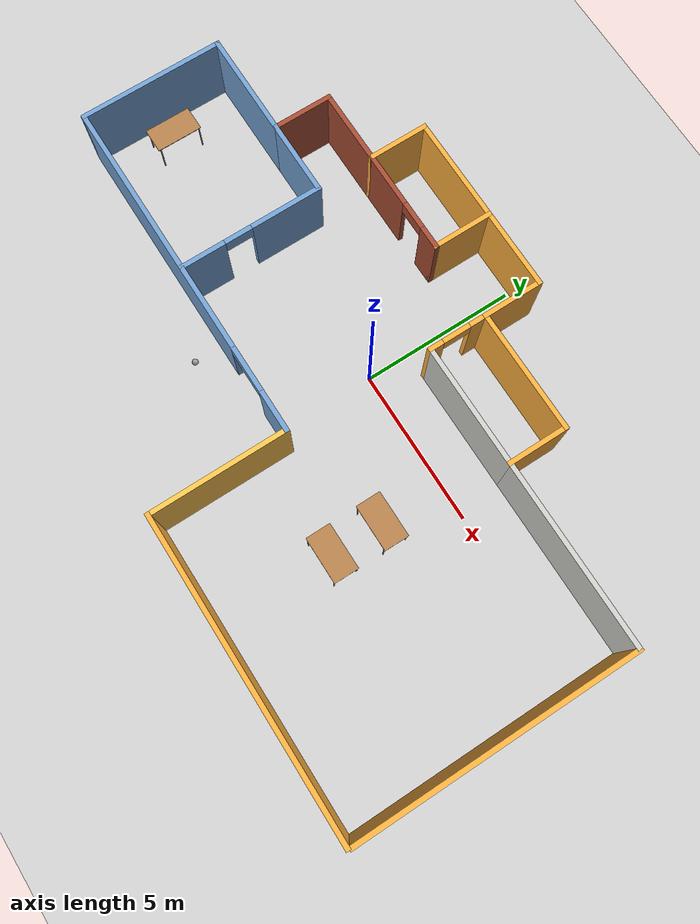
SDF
<sdf version="1.6">
 <world name="default">
  <plugin name="hello" filename="libhello.so"/>
  <plugin name="hello" filename="libhello.so"/>
  <light name="sun" type="directional">
   <pose>0 0 10 0 -0 0</pose>
   <diffuse>0.8 0.8 0.8 1</diffuse>
   <specular>0.2 0.2 0.2 1</specular>
   <attenuation>
    <range>1000</range>
    <constant>0.9</constant>
    <linear>0.01</linear>
    <quadratic>0.001</quadratic>
   </attenuation>
   <direction>-0.5 0.1 -0.9</direction>
  </light>
  <model name="ground_plane">
   <static>1</static>
   <link name="link">
    <collision name="collision">
     <geometry><plane><normal>0 0 1</normal><size>100 100</size></plane></geometry>
     <surface>
      <contact><collide_bitmask>65535</collide_bitmask></contact>
      <friction><ode><mu>100</mu><mu2>50</mu2></ode></friction>
     </surface>
    </collision>
    <visual name="visual">
     <cast_shadows>0</cast_shadows>
     <geometry><plane><normal>0 0 1</normal><size>100 100</size></plane></geometry>
     <material>
      <script><uri>file://media/materials/scripts/gazebo.material</uri><name>Gazebo/Grey</name></script>
     </material>
    </visual>
   </link>
  </model>
  <gravity>0 0 -9.8</gravity>
  <magnetic_field>6e-06 2.3e-05 -4.2e-05</magnetic_field>
  <atmosphere type="adiabatic"/>
  <physics name="default_physics" default="0" type="ode">
   <max_step_size>0.001</max_step_size>
   <real_time_factor>1</real_time_factor>
   <real_time_update_rate>1000</real_time_update_rate>
  </physics>
  <scene><ambient>0.4 0.4 0.4 1</ambient><background>0.7 0.7 0.7 1</background><shadows>1</shadows></scene>
  <audio><device>default</device></audio>
  <spherical_coordinates>
   <surface_model>EARTH_WGS84</surface_model>
   <latitude_deg>0</latitude_deg>
   <longitude_deg>0</longitude_deg>
   <elevation>0</elevation>
   <heading_deg>0</heading_deg>
  </spherical_coordinates>
  <model name="mybuilding">
   <pose>-0.12961 -1.16265 0 0 -0 0</pose>
   <link name="Wall_10">
    <collision name="Wall_10_Collision">
     <geometry><box><size>2 0.15 2.5</size></box></geometry>
     <pose>0 0 1.25 0 -0 0</pose>
    </collision>
    <visual name="Wall_10_Visual">
     <pose>0 0 1.25 0 -0 0</pose>
     <geometry><box><size>2 0.15 2.5</size></box></geometry>
     <material>
      <script><uri>file://media/materials/scripts/gazebo.material</uri><name>Gazebo/Grey</name></script>
      <ambient>0.988235 0.686275 0.243137 1</ambient>
     </material>
     <meta><layer>0</layer></meta>
    </visual>
    <pose>4.775 3.55 0 0 -0 -1.5708</pose>
   </link>
   <link name="Wall_11">
    <collision name="Wall_11_Collision">
     <geometry><box><size>6 0.15 2.5</size></box></geometry>
     <pose>0 0 1.25 0 -0 0</pose>
    </collision>
    <visual name="Wall_11_Visual">
     <pose>0 0 1.25 0 -0 0</pose>
     <geometry><box><size>6 0.15 2.5</size></box></geometry>
     <material>
      <script><uri>file://media/materials/scripts/gazebo.material</uri><name>Gazebo/CeilingTiled</name></script>
      <ambient>0.988235 0.686275 0.243137 1</ambient>
     </material>
     <meta><layer>0</layer></meta>
    </visual>
    <pose>7.7 2.625 0 0 -0 0</pose>
   </link>
   <link name="Wall_18">
    <collision name="Wall_18_Collision">
     <geometry><box><size>2 0.15 2.5</size></box></geometry>
     <pose>0 0 1.25 0 -0 0</pose>
    </collision>
    <visual name="Wall_18_Visual">
     <pose>0 0 1.25 0 -0 0</pose>
     <geometry><box><size>2 0.15 2.5</size></box></geometry>
     <material>
      <script><uri>file://media/materials/scripts/gazebo.material</uri><name>Gazebo/Bricks</name></script>
      <ambient>0.937255 0.160784 0.160784 1</ambient>
     </material>
     <meta><layer>0</layer></meta>
    </visual>
    <pose>-7.275 3.55 0 0 -0 -1.5708</pose>
   </link>
   <link name="Wall_19">
    <collision name="Wall_19_Collision">
     <geometry><box><size>3.5 0.15 2.5</size></box></geometry>
     <pose>0 0 1.25 0 -0 0</pose>
    </collision>
    <visual name="Wall_19_Visual">
     <pose>0 0 1.25 0 -0 0</pose>
     <geometry><box><size>3.5 0.15 2.5</size></box></geometry>
     <material>
      <script><uri>file://media/materials/scripts/gazebo.material</uri><name>Gazebo/Grey</name></script>
      <ambient>0.447059 0.623529 0.811765 1</ambient>
     </material>
     <meta><layer>0</layer></meta>
    </visual>
    <pose>-8.95 2.625 0 0 -0 3.14159</pose>
   </link>
   <link name="Wall_27">
    <collision name="Wall_27_Collision">
     <geometry><box><size>2.5 0.15 2.5</size></box></geometry>
     <pose>0 0 1.25 0 -0 0</pose>
    </collision>
    <visual name="Wall_27_Visual">
     <pose>0 0 1.25 0 -0 0</pose>
     <geometry><box><size>2.5 0.15 2.5</size></box></geometry>
     <material>
      <script><uri>file://media/materials/scripts/gazebo.material</uri><name>Gazebo/Grey</name></script>
      <ambient>0.447059 0.623529 0.811765 1</ambient>
     </material>
     <meta><layer>0</layer></meta>
    </visual>
    <pose>-6.1 2.625 0 0 -0 0</pose>
   </link>
   <link name="Wall_30">
    <collision name="Wall_30_Collision">
     <geometry><box><size>4 0.15 2.5</size></box></geometry>
     <pose>0 0 1.25 0 -0 0</pose>
    </collision>
    <visual name="Wall_30_Visual">
     <pose>0 0 1.25 0 -0 0</pose>
     <geometry><box><size>4 0.15 2.5</size></box></geometry>
     <material>
      <script><uri>file://media/materials/scripts/gazebo.material</uri><name>Gazebo/CeilingTiled</name></script>
      <ambient>0.988235 0.686275 0.243137 1</ambient>
     </material>
     <meta><layer>0</layer></meta>
    </visual>
    <pose>2.85 2.625 0 0 -0 3.14159</pose>
   </link>
   <link name="Wall_31">
    <pose>0.925 3.55 0 0 -0 1.5708</pose>
    <visual name="Wall_31_Visual_0">
     <pose>-0.756094 0 1.25 0 -0 0</pose>
     <geometry><box><size>0.487811 0.15 2.5</size></box></geometry>
     <material>
      <script><uri>file://media/materials/scripts/gazebo.material</uri><name>Gazebo/Grey</name></script>
      <ambient>0.988235 0.686275 0.243137 1</ambient>
     </material>
     <meta><layer>0</layer></meta>
    </visual>
    <collision name="Wall_31_Collision_0">
     <geometry><box><size>0.487811 0.15 2.5</size></box></geometry>
     <pose>-0.756094 0 1.25 0 -0 0</pose>
    </collision>
    <visual name="Wall_31_Visual_1">
     <pose>0.693906 0 1.25 0 -0 0</pose>
     <geometry><box><size>0.612189 0.15 2.5</size></box></geometry>
     <material>
      <script><uri>file://media/materials/scripts/gazebo.material</uri><name>Gazebo/Grey</name></script>
      <ambient>0.988235 0.686275 0.243137 1</ambient>
     </material>
     <meta><layer>0</layer></meta>
    </visual>
    <collision name="Wall_31_Collision_1">
     <geometry><box><size>0.612189 0.15 2.5</size></box></geometry>
     <pose>0.693906 0 1.25 0 -0 0</pose>
    </collision>
    <visual name="Wall_31_Visual_2">
     <pose>-0.062189 0 2.25 0 -0 0</pose>
     <geometry><box><size>0.9 0.15 0.5</size></box></geometry>
     <material>
      <script><uri>file://media/materials/scripts/gazebo.material</uri><name>Gazebo/Grey</name></script>
      <ambient>0.988235 0.686275 0.243137 1</ambient>
     </material>
     <meta><layer>0</layer></meta>
    </visual>
    <collision name="Wall_31_Collision_2">
     <geometry><box><size>0.9 0.15 0.5</size></box></geometry>
     <pose>-0.062189 0 2.25 0 -0 0</pose>
    </collision>
   </link>
   <link name="Wall_33">
    <pose>-3.25 4.475 0 0 -0 0</pose>
    <visual name="Wall_33_Visual_0">
     <pose>-0.834135 0 1.25 0 -0 0</pose>
     <geometry><box><size>1.83173 0.15 2.5</size></box></geometry>
     <material>
      <script><uri>file://media/materials/scripts/gazebo.material</uri><name>Gazebo/Bricks</name></script>
      <ambient>0.937255 0.160784 0.160784 1</ambient>
     </material>
     <meta><layer>0</layer></meta>
    </visual>
    <collision name="Wall_33_Collision_0">
     <geometry><box><size>1.83173 0.15 2.5</size></box></geometry>
     <pose>-0.834135 0 1.25 0 -0 0</pose>
    </collision>
    <visual name="Wall_33_Visual_1">
     <pose>1.36587 0 1.25 0 -0 0</pose>
     <geometry><box><size>0.76827 0.15 2.5</size></box></geometry>
     <material>
      <script><uri>file://media/materials/scripts/gazebo.material</uri><name>Gazebo/Bricks</name></script>
      <ambient>0.937255 0.160784 0.160784 1</ambient>
     </material>
     <meta><layer>0</layer></meta>
    </visual>
    <collision name="Wall_33_Collision_1">
     <geometry><box><size>0.76827 0.15 2.5</size></box></geometry>
     <pose>1.36587 0 1.25 0 -0 0</pose>
    </collision>
    <visual name="Wall_33_Visual_2">
     <pose>0.53173 0 2.25 0 -0 0</pose>
     <geometry><box><size>0.9 0.15 0.5</size></box></geometry>
     <material>
      <script><uri>file://media/materials/scripts/gazebo.material</uri><name>Gazebo/Bricks</name></script>
      <ambient>0.937255 0.160784 0.160784 1</ambient>
     </material>
     <meta><layer>0</layer></meta>
    </visual>
    <collision name="Wall_33_Collision_2">
     <geometry><box><size>0.9 0.15 0.5</size></box></geometry>
     <pose>0.53173 0 2.25 0 -0 0</pose>
    </collision>
   </link>
   <link name="Wall_34">
    <collision name="Wall_34_Collision">
     <geometry><box><size>2 0.15 2.5</size></box></geometry>
     <pose>0 0 1.25 0 -0 0</pose>
    </collision>
    <visual name="Wall_34_Visual">
     <pose>0 0 1.25 0 -0 0</pose>
     <geometry><box><size>2 0.15 2.5</size></box></geometry>
     <material>
      <script><uri>file://media/materials/scripts/gazebo.material</uri><name>Gazebo/Grey</name></script>
      <ambient>0.988235 0.686275 0.243137 1</ambient>
     </material>
     <meta><layer>0</layer></meta>
    </visual>
    <pose>-1.575 5.4 0 0 -0 1.5708</pose>
   </link>
   <link name="Wall_36">
    <collision name="Wall_36_Collision">
     <geometry><box><size>9 0.15 2.5</size></box></geometry>
     <pose>0 0 1.25 0 -0 0</pose>
    </collision>
    <visual name="Wall_36_Visual">
     <pose>0 0 1.25 0 -0 0</pose>
     <geometry><box><size>9 0.15 2.5</size></box></geometry>
     <material>
      <script><uri>file://media/materials/scripts/gazebo.material</uri><name>Gazebo/Grey</name></script>
      <ambient>0.988235 0.686275 0.243137 1</ambient>
     </material>
     <meta><layer>0</layer></meta>
    </visual>
    <pose>10.625 -1.8 0 0 -0 -1.5708</pose>
   </link>
   <link name="Wall_38">
    <collision name="Wall_38_Collision">
     <geometry><box><size>4.75 0.15 2.5</size></box></geometry>
     <pose>0 0 1.25 0 -0 0</pose>
    </collision>
    <visual name="Wall_38_Visual">
     <pose>0 0 1.25 0 -0 0</pose>
     <geometry><box><size>4.75 0.15 2.5</size></box></geometry>
     <material>
      <script><uri>file://media/materials/scripts/gazebo.material</uri><name>Gazebo/Grey</name></script>
      <ambient>0.447059 0.623529 0.811765 1</ambient>
     </material>
     <meta><layer>0</layer></meta>
    </visual>
    <pose>-10.625 0.325 0 0 -0 -1.5708</pose>
   </link>
   <link name="Wall_39">
    <pose>-4.95 -1.975 0 0 -0 0</pose>
    <visual name="Wall_39_Visual_0">
     <pose>-1.44542 0 1.25 0 -0 0</pose>
     <geometry><box><size>8.60915 0.15 2.5</size></box></geometry>
     <material>
      <script><uri>file://media/materials/scripts/gazebo.material</uri><name>Gazebo/Grey</name></script>
      <ambient>0.447059 0.623529 0.811765 1</ambient>
     </material>
     <meta><layer>0</layer></meta>
    </visual>
    <collision name="Wall_39_Collision_0">
     <geometry><box><size>8.60915 0.15 2.5</size></box></geometry>
     <pose>-1.44542 0 1.25 0 -0 0</pose>
    </collision>
    <visual name="Wall_39_Visual_1">
     <pose>5.05457 0 1.25 0 -0 0</pose>
     <geometry><box><size>1.39085 0.15 2.5</size></box></geometry>
     <material>
      <script><uri>file://media/materials/scripts/gazebo.material</uri><name>Gazebo/Grey</name></script>
      <ambient>0.447059 0.623529 0.811765 1</ambient>
     </material>
     <meta><layer>0</layer></meta>
    </visual>
    <collision name="Wall_39_Collision_1">
     <geometry><box><size>1.39085 0.15 2.5</size></box></geometry>
     <pose>5.05457 0 1.25 0 -0 0</pose>
    </collision>
    <visual name="Wall_39_Visual_2">
     <pose>3.60915 0 2.25 0 -0 0</pose>
     <geometry><box><size>1.5 0.15 0.5</size></box></geometry>
     <material>
      <script><uri>file://media/materials/scripts/gazebo.material</uri><name>Gazebo/Grey</name></script>
      <ambient>0.447059 0.623529 0.811765 1</ambient>
     </material>
     <meta><layer>0</layer></meta>
    </visual>
    <collision name="Wall_39_Collision_2">
     <geometry><box><size>1.5 0.15 0.5</size></box></geometry>
     <pose>3.60915 0 2.25 0 -0 0</pose>
    </collision>
   </link>
   <link name="Wall_40">
    <collision name="Wall_40_Collision">
     <geometry><box><size>4.5 0.15 2.5</size></box></geometry>
     <pose>0 0 1.25 0 -0 0</pose>
    </collision>
    <visual name="Wall_40_Visual">
     <pose>0 0 1.25 0 -0 0</pose>
     <geometry><box><size>4.5 0.15 2.5</size></box></geometry>
     <material>
      <script><uri>file://media/materials/scripts/gazebo.material</uri><name>Gazebo/Grey</name></script>
      <ambient>1 0.764706 0.305882 1</ambient>
     </material>
     <meta><layer>0</layer></meta>
    </visual>
    <pose>0.725 -4.15 0 0 -0 -1.5708</pose>
   </link>
   <link name="Wall_41">
    <collision name="Wall_41_Collision">
     <geometry><box><size>10 0.15 2.5</size></box></geometry>
     <pose>0 0 1.25 0 -0 0</pose>
    </collision>
    <visual name="Wall_41_Visual">
     <pose>0 0 1.25 0 -0 0</pose>
     <geometry><box><size>10 0.15 2.5</size></box></geometry>
     <material>
      <script><uri>file://media/materials/scripts/gazebo.material</uri><name>Gazebo/Grey</name></script>
      <ambient>0.988235 0.686275 0.243137 1</ambient>
     </material>
     <meta><layer>0</layer></meta>
    </visual>
    <pose>5.65 -6.325 0 0 -0 0</pose>
   </link>
   <link name="Wall_43">
    <pose>-4.925 0.325 0 0 -0 -1.5708</pose>
    <visual name="Wall_43_Visual_0">
     <pose>-1.20116 0 1.25 0 -0 0</pose>
     <geometry><box><size>2.34769 0.15 2.5</size></box></geometry>
     <material>
      <script><uri>file://media/materials/scripts/gazebo.material</uri><name>Gazebo/Grey</name></script>
      <ambient>0.447059 0.623529 0.811765 1</ambient>
     </material>
     <meta><layer>0</layer></meta>
    </visual>
    <collision name="Wall_43_Collision_0">
     <geometry><box><size>2.34769 0.15 2.5</size></box></geometry>
     <pose>-1.20116 0 1.25 0 -0 0</pose>
    </collision>
    <visual name="Wall_43_Visual_1">
     <pose>1.62384 0 1.25 0 -0 0</pose>
     <geometry><box><size>1.50231 0.15 2.5</size></box></geometry>
     <material>
      <script><uri>file://media/materials/scripts/gazebo.material</uri><name>Gazebo/Grey</name></script>
      <ambient>0.447059 0.623529 0.811765 1</ambient>
     </material>
     <meta><layer>0</layer></meta>
    </visual>
    <collision name="Wall_43_Collision_1">
     <geometry><box><size>1.50231 0.15 2.5</size></box></geometry>
     <pose>1.62384 0 1.25 0 -0 0</pose>
    </collision>
    <visual name="Wall_43_Visual_2">
     <pose>0.422687 0 2.25 0 -0 0</pose>
     <geometry><box><size>0.9 0.15 0.5</size></box></geometry>
     <material>
      <script><uri>file://media/materials/scripts/gazebo.material</uri><name>Gazebo/Grey</name></script>
      <ambient>0.447059 0.623529 0.811765 1</ambient>
     </material>
     <meta><layer>0</layer></meta>
    </visual>
    <collision name="Wall_43_Collision_2">
     <geometry><box><size>0.9 0.15 0.5</size></box></geometry>
     <pose>0.422687 0 2.25 0 -0 0</pose>
    </collision>
   </link>
   <link name="Wall_5">
    <collision name="Wall_5_Collision">
     <geometry><box><size>2.5 0.15 2.5</size></box></geometry>
     <pose>0 0 1.25 0 -0 0</pose>
    </collision>
    <visual name="Wall_5_Visual">
     <pose>0 0 1.25 0 -0 0</pose>
     <geometry><box><size>2.5 0.15 2.5</size></box></geometry>
     <material>
      <script><uri>file://media/materials/scripts/gazebo.material</uri><name>Gazebo/Bricks</name></script>
      <ambient>0.937255 0.160784 0.160784 1</ambient>
     </material>
     <meta><layer>0</layer></meta>
    </visual>
    <pose>-6.1 4.475 0 0 -0 0</pose>
   </link>
   <link name="Wall_6">
    <collision name="Wall_6_Collision">
     <geometry><box><size>2 0.15 2.5</size></box></geometry>
     <pose>0 0 1.25 0 -0 0</pose>
    </collision>
    <visual name="Wall_6_Visual">
     <pose>0 0 1.25 0 -0 0</pose>
     <geometry><box><size>2 0.15 2.5</size></box></geometry>
     <material>
      <script><uri>file://media/materials/scripts/gazebo.material</uri><name>Gazebo/Grey</name></script>
      <ambient>0.988235 0.686275 0.243137 1</ambient>
     </material>
     <meta><layer>0</layer></meta>
    </visual>
    <pose>-4.925 5.4 0 0 -0 1.5708</pose>
   </link>
   <link name="Wall_7">
    <collision name="Wall_7_Collision">
     <geometry><box><size>6 0.15 2.5</size></box></geometry>
     <pose>0 0 1.25 0 -0 0</pose>
    </collision>
    <visual name="Wall_7_Visual">
     <pose>0 0 1.25 0 -0 0</pose>
     <geometry><box><size>6 0.15 2.5</size></box></geometry>
     <material>
      <script><uri>file://media/materials/scripts/gazebo.material</uri><name>Gazebo/Grey</name></script>
      <ambient>0.988235 0.686275 0.243137 1</ambient>
     </material>
     <meta><layer>0</layer></meta>
    </visual>
    <pose>-2 6.325 0 0 -0 0</pose>
   </link>
   <link name="Wall_8">
    <collision name="Wall_8_Collision">
     <geometry><box><size>2 0.15 2.5</size></box></geometry>
     <pose>0 0 1.25 0 -0 0</pose>
    </collision>
    <visual name="Wall_8_Visual">
     <pose>0 0 1.25 0 -0 0</pose>
     <geometry><box><size>2 0.15 2.5</size></box></geometry>
     <material>
      <script><uri>file://media/materials/scripts/gazebo.material</uri><name>Gazebo/Grey</name></script>
      <ambient>0.988235 0.686275 0.243137 1</ambient>
     </material>
     <meta><layer>0</layer></meta>
    </visual>
    <pose>0.925 5.4 0 0 -0 -1.5708</pose>
   </link>
   <link name="Wall_9">
    <collision name="Wall_9_Collision">
     <geometry><box><size>4 0.15 2.5</size></box></geometry>
     <pose>0 0 1.25 0 -0 0</pose>
    </collision>
    <visual name="Wall_9_Visual">
     <pose>0 0 1.25 0 -0 0</pose>
     <geometry><box><size>4 0.15 2.5</size></box></geometry>
     <material>
      <script><uri>file://media/materials/scripts/gazebo.material</uri><name>Gazebo/Grey</name></script>
      <ambient>0.988235 0.686275 0.243137 1</ambient>
     </material>
     <meta><layer>0</layer></meta>
    </visual>
    <pose>2.85 4.475 0 0 -0 0</pose>
   </link>
   <static>1</static>
  </model>
  <model name="my_ball">
   <link name="link_0">
    <inertial>
     <mass>1</mass>
     <inertia><ixx>0.1</ixx><ixy>0</ixy><ixz>0</ixz><iyy>0.1</iyy><iyz>0</iyz><izz>0.1</izz></inertia>
    </inertial>
    <visual name="visual">
     <geometry><sphere><radius>0.1</radius></sphere></geometry>
     <material>
      <lighting>1</lighting>
      <script><uri>file://media/materials/scripts/gazebo.material</uri><name>Gazebo/Grey</name></script>
      <shader type="vertex"><normal_map>__default__</normal_map></shader>
      <ambient>1 1 1 1</ambient>
      <diffuse>1 1 1 1</diffuse>
      <specular>1 1 1 1</specular>
      <emissive>1 1 1 1</emissive>
     </material>
    </visual>
    <collision name="collision">
     <geometry><sphere><radius>0.1</radius></sphere></geometry>
     <surface>
      <friction>
       <ode><mu>1</mu><mu2>1</mu2><fdir1>0 0 0</fdir1><slip1>0</slip1><slip2>0</slip2></ode>
       <torsional>
        <coefficient>1</coefficient>
        <patch_radius>0</patch_radius>
        <surface_radius>0</surface_radius>
        <use_patch_radius>1</use_patch_radius>
        <ode><slip>0</slip></ode>
       </torsional>
      </friction>
      <bounce><restitution_coefficient>0</restitution_coefficient><threshold>1e+06</threshold></bounce>
      <contact>
       <collide_without_contact>0</collide_without_contact>
       <collide_without_contact_bitmask>1</collide_without_contact_bitmask>
       <collide_bitmask>1</collide_bitmask>
       <ode>
        <soft_cfm>0</soft_cfm>
        <soft_erp>0.2</soft_erp>
        <kp>1e+13</kp>
        <kd>1</kd>
        <max_vel>0.01</max_vel>
        <min_depth>0</min_depth>
       </ode>
       <bullet>
        <split_impulse>1</split_impulse>
        <split_impulse_penetration_threshold>-0.01</split_impulse_penetration_threshold>
        <soft_cfm>0</soft_cfm>
        <soft_erp>0.2</soft_erp>
        <kp>1e+13</kp>
        <kd>1</kd>
       </bullet>
      </contact>
     </surface>
    </collision>
   </link>
   <static>0</static>
   <pose>-3.25093 -4.11302 0.1 0 -0 0</pose>
  </model>
  <model name="table">
   <static>1</static>
   <link name="link">
    <collision name="surface">
     <pose>0 0 1 0 -0 0</pose>
     <geometry><box><size>1.5 0.8 0.03</size></box></geometry>
     <surface><friction><ode><mu>0.6</mu><mu2>0.6</mu2></ode></friction></surface>
    </collision>
    <visual name="visual1">
     <pose>0 0 1 0 -0 0</pose>
     <geometry><box><size>1.5 0.8 0.03</size></box></geometry>
     <material>
      <script><uri>file://media/materials/scripts/gazebo.material</uri><name>Gazebo/Wood</name></script>
     </material>
    </visual>
    <collision name="front_left_leg">
     <pose>0.68 0.38 0.5 0 -0 0</pose>
     <geometry><cylinder><radius>0.02</radius><length>1</length></cylinder></geometry>
    </collision>
    <visual name="front_left_leg">
     <pose>0.68 0.38 0.5 0 -0 0</pose>
     <geometry><cylinder><radius>0.02</radius><length>1</length></cylinder></geometry>
     <material>
      <script><uri>file://media/materials/scripts/gazebo.material</uri><name>Gazebo/Grey</name></script>
     </material>
    </visual>
    <collision name="front_right_leg">
     <pose>0.68 -0.38 0.5 0 -0 0</pose>
     <geometry><cylinder><radius>0.02</radius><length>1</length></cylinder></geometry>
    </collision>
    <visual name="front_right_leg">
     <pose>0.68 -0.38 0.5 0 -0 0</pose>
     <geometry><cylinder><radius>0.02</radius><length>1</length></cylinder></geometry>
     <material>
      <script><uri>file://media/materials/scripts/gazebo.material</uri><name>Gazebo/Grey</name></script>
     </material>
    </visual>
    <collision name="back_right_leg">
     <pose>-0.68 -0.38 0.5 0 -0 0</pose>
     <geometry><cylinder><radius>0.02</radius><length>1</length></cylinder></geometry>
    </collision>
    <visual name="back_right_leg">
     <pose>-0.68 -0.38 0.5 0 -0 0</pose>
     <geometry><cylinder><radius>0.02</radius><length>1</length></cylinder></geometry>
     <material>
      <script><uri>file://media/materials/scripts/gazebo.material</uri><name>Gazebo/Grey</name></script>
     </material>
    </visual>
    <collision name="back_left_leg">
     <pose>-0.68 0.38 0.5 0 -0 0</pose>
     <geometry><cylinder><radius>0.02</radius><length>1</length></cylinder></geometry>
    </collision>
    <visual name="back_left_leg">
     <pose>-0.68 0.38 0.5 0 -0 0</pose>
     <geometry><cylinder><radius>0.02</radius><length>1</length></cylinder></geometry>
     <material>
      <script><uri>file://media/materials/scripts/gazebo.material</uri><name>Gazebo/Grey</name></script>
     </material>
    </visual>
   </link>
   <pose>3.92547 -2.12999 0 0 -0 0</pose>
  </model>
  <model name="table_clone">
   <static>1</static>
   <link name="link">
    <collision name="surface">
     <pose>0 0 1 0 -0 0</pose>
     <geometry><box><size>1.5 0.8 0.03</size></box></geometry>
     <surface><friction><ode><mu>0.6</mu><mu2>0.6</mu2></ode></friction></surface>
    </collision>
    <visual name="visual1">
     <pose>0 0 1 0 -0 0</pose>
     <geometry><box><size>1.5 0.8 0.03</size></box></geometry>
     <material>
      <script><uri>file://media/materials/scripts/gazebo.material</uri><name>Gazebo/Wood</name></script>
     </material>
    </visual>
    <collision name="front_left_leg">
     <pose>0.68 0.38 0.5 0 -0 0</pose>
     <geometry><cylinder><radius>0.02</radius><length>1</length></cylinder></geometry>
    </collision>
    <visual name="front_left_leg">
     <pose>0.68 0.38 0.5 0 -0 0</pose>
     <geometry><cylinder><radius>0.02</radius><length>1</length></cylinder></geometry>
     <material>
      <script><uri>file://media/materials/scripts/gazebo.material</uri><name>Gazebo/Grey</name></script>
     </material>
    </visual>
    <collision name="front_right_leg">
     <pose>0.68 -0.38 0.5 0 -0 0</pose>
     <geometry><cylinder><radius>0.02</radius><length>1</length></cylinder></geometry>
    </collision>
    <visual name="front_right_leg">
     <pose>0.68 -0.38 0.5 0 -0 0</pose>
     <geometry><cylinder><radius>0.02</radius><length>1</length></cylinder></geometry>
     <material>
      <script><uri>file://media/materials/scripts/gazebo.material</uri><name>Gazebo/Grey</name></script>
     </material>
    </visual>
    <collision name="back_right_leg">
     <pose>-0.68 -0.38 0.5 0 -0 0</pose>
     <geometry><cylinder><radius>0.02</radius><length>1</length></cylinder></geometry>
    </collision>
    <visual name="back_right_leg">
     <pose>-0.68 -0.38 0.5 0 -0 0</pose>
     <geometry><cylinder><radius>0.02</radius><length>1</length></cylinder></geometry>
     <material>
      <script><uri>file://media/materials/scripts/gazebo.material</uri><name>Gazebo/Grey</name></script>
     </material>
    </visual>
    <collision name="back_left_leg">
     <pose>-0.68 0.38 0.5 0 -0 0</pose>
     <geometry><cylinder><radius>0.02</radius><length>1</length></cylinder></geometry>
    </collision>
    <visual name="back_left_leg">
     <pose>-0.68 0.38 0.5 0 -0 0</pose>
     <geometry><cylinder><radius>0.02</radius><length>1</length></cylinder></geometry>
     <material>
      <script><uri>file://media/materials/scripts/gazebo.material</uri><name>Gazebo/Grey</name></script>
     </material>
    </visual>
   </link>
   <pose>3.9311 -3.79892 0 0 -0 0</pose>
  </model>
  <model name="table_clone_clone">
   <static>1</static>
   <link name="link">
    <collision name="surface">
     <pose>0 0 1 0 -0 0</pose>
     <geometry><box><size>1.5 0.8 0.03</size></box></geometry>
     <surface><friction><ode><mu>0.6</mu><mu2>0.6</mu2></ode></friction></surface>
    </collision>
    <visual name="visual1">
     <pose>0 0 1 0 -0 0</pose>
     <geometry><box><size>1.5 0.8 0.03</size></box></geometry>
     <material>
      <script><uri>file://media/materials/scripts/gazebo.material</uri><name>Gazebo/Wood</name></script>
     </material>
    </visual>
    <collision name="front_left_leg">
     <pose>0.68 0.38 0.5 0 -0 0</pose>
     <geometry><cylinder><radius>0.02</radius><length>1</length></cylinder></geometry>
    </collision>
    <visual name="front_left_leg">
     <pose>0.68 0.38 0.5 0 -0 0</pose>
     <geometry><cylinder><radius>0.02</radius><length>1</length></cylinder></geometry>
     <material>
      <script><uri>file://media/materials/scripts/gazebo.material</uri><name>Gazebo/Grey</name></script>
     </material>
    </visual>
    <collision name="front_right_leg">
     <pose>0.68 -0.38 0.5 0 -0 0</pose>
     <geometry><cylinder><radius>0.02</radius><length>1</length></cylinder></geometry>
    </collision>
    <visual name="front_right_leg">
     <pose>0.68 -0.38 0.5 0 -0 0</pose>
     <geometry><cylinder><radius>0.02</radius><length>1</length></cylinder></geometry>
     <material>
      <script><uri>file://media/materials/scripts/gazebo.material</uri><name>Gazebo/Grey</name></script>
     </material>
    </visual>
    <collision name="back_right_leg">
     <pose>-0.68 -0.38 0.5 0 -0 0</pose>
     <geometry><cylinder><radius>0.02</radius><length>1</length></cylinder></geometry>
    </collision>
    <visual name="back_right_leg">
     <pose>-0.68 -0.38 0.5 0 -0 0</pose>
     <geometry><cylinder><radius>0.02</radius><length>1</length></cylinder></geometry>
     <material>
      <script><uri>file://media/materials/scripts/gazebo.material</uri><name>Gazebo/Grey</name></script>
     </material>
    </visual>
    <collision name="back_left_leg">
     <pose>-0.68 0.38 0.5 0 -0 0</pose>
     <geometry><cylinder><radius>0.02</radius><length>1</length></cylinder></geometry>
    </collision>
    <visual name="back_left_leg">
     <pose>-0.68 0.38 0.5 0 -0 0</pose>
     <geometry><cylinder><radius>0.02</radius><length>1</length></cylinder></geometry>
     <material>
      <script><uri>file://media/materials/scripts/gazebo.material</uri><name>Gazebo/Grey</name></script>
     </material>
    </visual>
   </link>
   <pose>-9.82455 -0.876355 0 0 0 -1.57077</pose>
  </model>
 </world>
</sdf>
